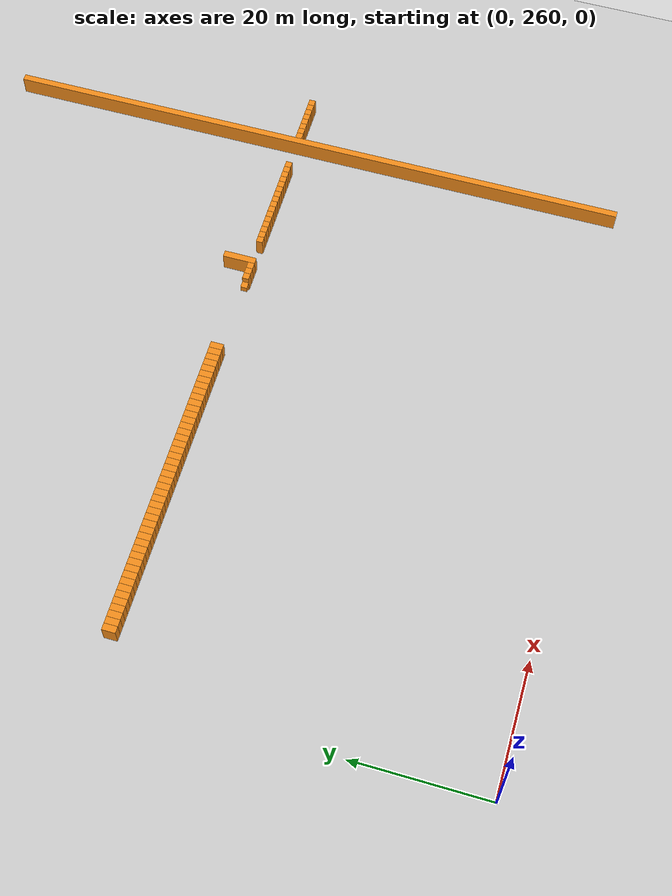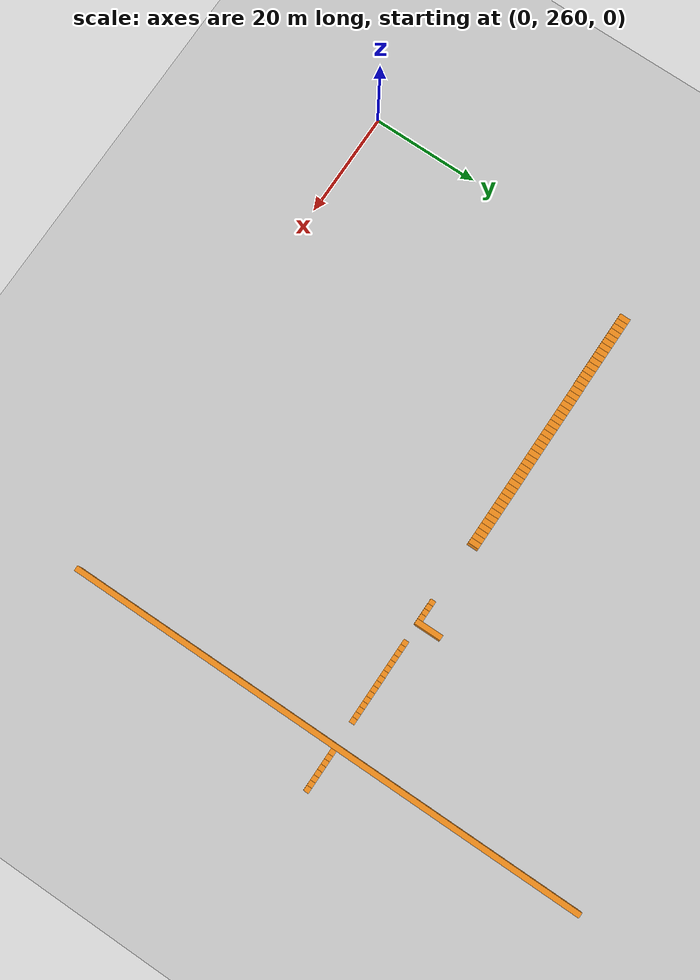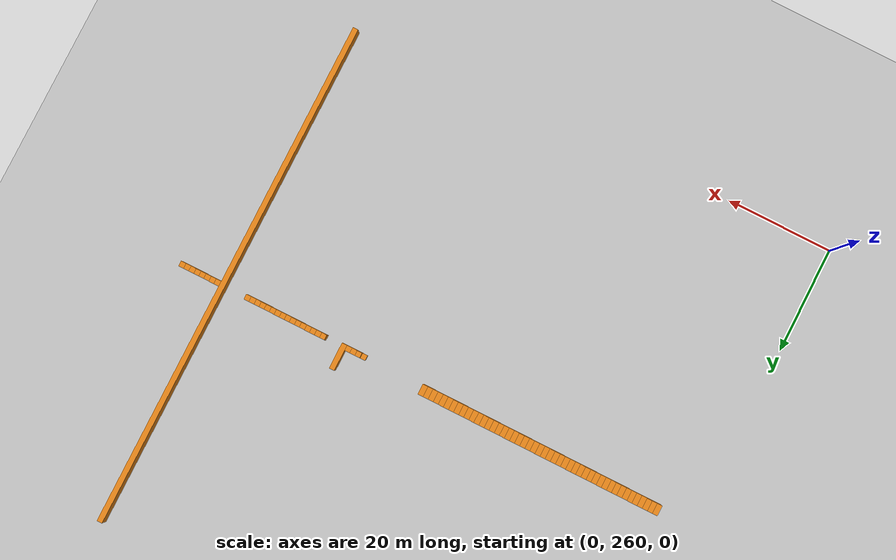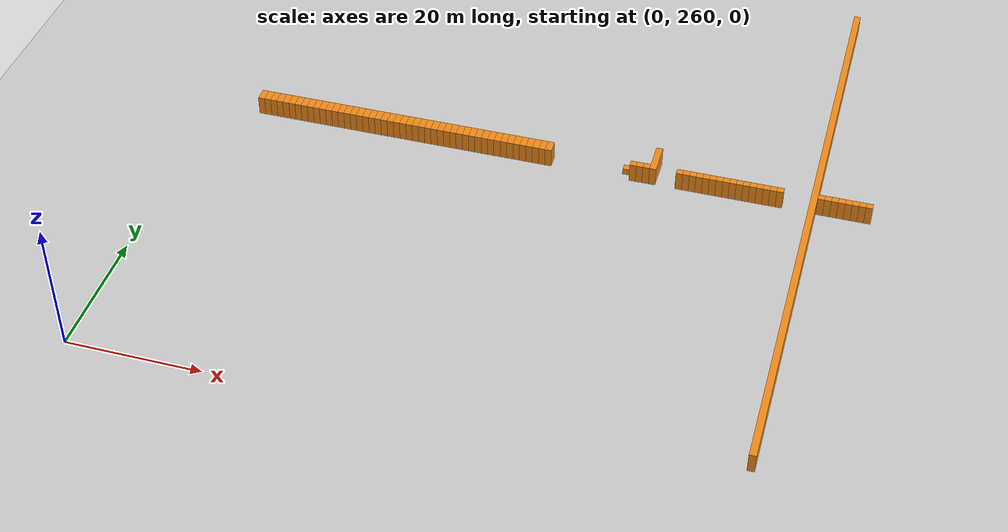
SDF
<sdf version="1.6">
 <world name="default">
  <include><uri>model://ground_plane</uri></include>
  <model name="unit_box_016">
   <pose>7.50   315.00     1.50 0 0 0</pose>
   <static>1</static>
   <link name="link">
    <inertial>
     <mass>5000</mass>
     <inertia><ixx>200</ixx><ixy>0</ixy><ixz>0</ixz><iyy>200</iyy><iyz>0</iyz><izz>200</izz></inertia>
    </inertial>
    <collision name="collision"><geometry><box><size>1 2 3</size></box></geometry></collision>
    <visual name="visual">
     <geometry><box><size>1 2 3</size></box></geometry>
     <material>
      <script><name>Gazebo/Orange</name><uri>file://media/materials/scripts/gazebo.material</uri></script>
     </material>
    </visual>
   </link>
  </model>
  <model name="unit_box_029">
   <pose>8.50   315.00     1.50 0 0 0</pose>
   <static>1</static>
   <link name="link">
    <inertial>
     <mass>5000</mass>
     <inertia><ixx>200</ixx><ixy>0</ixy><ixz>0</ixz><iyy>200</iyy><iyz>0</iyz><izz>200</izz></inertia>
    </inertial>
    <collision name="collision"><geometry><box><size>1 2 3</size></box></geometry></collision>
    <visual name="visual">
     <geometry><box><size>1 2 3</size></box></geometry>
     <material>
      <script><name>Gazebo/Orange</name><uri>file://media/materials/scripts/gazebo.material</uri></script>
     </material>
    </visual>
   </link>
  </model>
  <model name="unit_box_042">
   <pose>9.50   315.00     1.50 0 0 0</pose>
   <static>1</static>
   <link name="link">
    <inertial>
     <mass>5000</mass>
     <inertia><ixx>200</ixx><ixy>0</ixy><ixz>0</ixz><iyy>200</iyy><iyz>0</iyz><izz>200</izz></inertia>
    </inertial>
    <collision name="collision"><geometry><box><size>1 2 3</size></box></geometry></collision>
    <visual name="visual">
     <geometry><box><size>1 2 3</size></box></geometry>
     <material>
      <script><name>Gazebo/Orange</name><uri>file://media/materials/scripts/gazebo.material</uri></script>
     </material>
    </visual>
   </link>
  </model>
  <model name="unit_box_055">
   <pose>10.50   315.00     1.50 0 0 0</pose>
   <static>1</static>
   <link name="link">
    <inertial>
     <mass>5000</mass>
     <inertia><ixx>200</ixx><ixy>0</ixy><ixz>0</ixz><iyy>200</iyy><iyz>0</iyz><izz>200</izz></inertia>
    </inertial>
    <collision name="collision"><geometry><box><size>1 2 3</size></box></geometry></collision>
    <visual name="visual">
     <geometry><box><size>1 2 3</size></box></geometry>
     <material>
      <script><name>Gazebo/Orange</name><uri>file://media/materials/scripts/gazebo.material</uri></script>
     </material>
    </visual>
   </link>
  </model>
  <model name="unit_box_068">
   <pose>11.50   315.00     1.50 0 0 0</pose>
   <static>1</static>
   <link name="link">
    <inertial>
     <mass>5000</mass>
     <inertia><ixx>200</ixx><ixy>0</ixy><ixz>0</ixz><iyy>200</iyy><iyz>0</iyz><izz>200</izz></inertia>
    </inertial>
    <collision name="collision"><geometry><box><size>1 2 3</size></box></geometry></collision>
    <visual name="visual">
     <geometry><box><size>1 2 3</size></box></geometry>
     <material>
      <script><name>Gazebo/Orange</name><uri>file://media/materials/scripts/gazebo.material</uri></script>
     </material>
    </visual>
   </link>
  </model>
  <model name="unit_box_081">
   <pose>12.50   315.00     1.50 0 0 0</pose>
   <static>1</static>
   <link name="link">
    <inertial>
     <mass>5000</mass>
     <inertia><ixx>200</ixx><ixy>0</ixy><ixz>0</ixz><iyy>200</iyy><iyz>0</iyz><izz>200</izz></inertia>
    </inertial>
    <collision name="collision"><geometry><box><size>1 2 3</size></box></geometry></collision>
    <visual name="visual">
     <geometry><box><size>1 2 3</size></box></geometry>
     <material>
      <script><name>Gazebo/Orange</name><uri>file://media/materials/scripts/gazebo.material</uri></script>
     </material>
    </visual>
   </link>
  </model>
  <model name="unit_box_094">
   <pose>13.50   315.00     1.50 0 0 0</pose>
   <static>1</static>
   <link name="link">
    <inertial>
     <mass>5000</mass>
     <inertia><ixx>200</ixx><ixy>0</ixy><ixz>0</ixz><iyy>200</iyy><iyz>0</iyz><izz>200</izz></inertia>
    </inertial>
    <collision name="collision"><geometry><box><size>1 2 3</size></box></geometry></collision>
    <visual name="visual">
     <geometry><box><size>1 2 3</size></box></geometry>
     <material>
      <script><name>Gazebo/Orange</name><uri>file://media/materials/scripts/gazebo.material</uri></script>
     </material>
    </visual>
   </link>
  </model>
  <model name="unit_box_107">
   <pose>14.50   315.00     1.50 0 0 0</pose>
   <static>1</static>
   <link name="link">
    <inertial>
     <mass>5000</mass>
     <inertia><ixx>200</ixx><ixy>0</ixy><ixz>0</ixz><iyy>200</iyy><iyz>0</iyz><izz>200</izz></inertia>
    </inertial>
    <collision name="collision"><geometry><box><size>1 2 3</size></box></geometry></collision>
    <visual name="visual">
     <geometry><box><size>1 2 3</size></box></geometry>
     <material>
      <script><name>Gazebo/Orange</name><uri>file://media/materials/scripts/gazebo.material</uri></script>
     </material>
    </visual>
   </link>
  </model>
  <model name="unit_box_120">
   <pose>15.50   315.00     1.50 0 0 0</pose>
   <static>1</static>
   <link name="link">
    <inertial>
     <mass>5000</mass>
     <inertia><ixx>200</ixx><ixy>0</ixy><ixz>0</ixz><iyy>200</iyy><iyz>0</iyz><izz>200</izz></inertia>
    </inertial>
    <collision name="collision"><geometry><box><size>1 2 3</size></box></geometry></collision>
    <visual name="visual">
     <geometry><box><size>1 2 3</size></box></geometry>
     <material>
      <script><name>Gazebo/Orange</name><uri>file://media/materials/scripts/gazebo.material</uri></script>
     </material>
    </visual>
   </link>
  </model>
  <model name="unit_box_133">
   <pose>16.50   315.00     1.50 0 0 0</pose>
   <static>1</static>
   <link name="link">
    <inertial>
     <mass>5000</mass>
     <inertia><ixx>200</ixx><ixy>0</ixy><ixz>0</ixz><iyy>200</iyy><iyz>0</iyz><izz>200</izz></inertia>
    </inertial>
    <collision name="collision"><geometry><box><size>1 2 3</size></box></geometry></collision>
    <visual name="visual">
     <geometry><box><size>1 2 3</size></box></geometry>
     <material>
      <script><name>Gazebo/Orange</name><uri>file://media/materials/scripts/gazebo.material</uri></script>
     </material>
    </visual>
   </link>
  </model>
  <model name="unit_box_146">
   <pose>17.50   315.00     1.50 0 0 0</pose>
   <static>1</static>
   <link name="link">
    <inertial>
     <mass>5000</mass>
     <inertia><ixx>200</ixx><ixy>0</ixy><ixz>0</ixz><iyy>200</iyy><iyz>0</iyz><izz>200</izz></inertia>
    </inertial>
    <collision name="collision"><geometry><box><size>1 2 3</size></box></geometry></collision>
    <visual name="visual">
     <geometry><box><size>1 2 3</size></box></geometry>
     <material>
      <script><name>Gazebo/Orange</name><uri>file://media/materials/scripts/gazebo.material</uri></script>
     </material>
    </visual>
   </link>
  </model>
  <model name="unit_box_159">
   <pose>18.50   315.00     1.50 0 0 0</pose>
   <static>1</static>
   <link name="link">
    <inertial>
     <mass>5000</mass>
     <inertia><ixx>200</ixx><ixy>0</ixy><ixz>0</ixz><iyy>200</iyy><iyz>0</iyz><izz>200</izz></inertia>
    </inertial>
    <collision name="collision"><geometry><box><size>1 2 3</size></box></geometry></collision>
    <visual name="visual">
     <geometry><box><size>1 2 3</size></box></geometry>
     <material>
      <script><name>Gazebo/Orange</name><uri>file://media/materials/scripts/gazebo.material</uri></script>
     </material>
    </visual>
   </link>
  </model>
  <model name="unit_box_172">
   <pose>19.50   315.00     1.50 0 0 0</pose>
   <static>1</static>
   <link name="link">
    <inertial>
     <mass>5000</mass>
     <inertia><ixx>200</ixx><ixy>0</ixy><ixz>0</ixz><iyy>200</iyy><iyz>0</iyz><izz>200</izz></inertia>
    </inertial>
    <collision name="collision"><geometry><box><size>1 2 3</size></box></geometry></collision>
    <visual name="visual">
     <geometry><box><size>1 2 3</size></box></geometry>
     <material>
      <script><name>Gazebo/Orange</name><uri>file://media/materials/scripts/gazebo.material</uri></script>
     </material>
    </visual>
   </link>
  </model>
  <model name="unit_box_185">
   <pose>20.50   315.00     1.50 0 0 0</pose>
   <static>1</static>
   <link name="link">
    <inertial>
     <mass>5000</mass>
     <inertia><ixx>200</ixx><ixy>0</ixy><ixz>0</ixz><iyy>200</iyy><iyz>0</iyz><izz>200</izz></inertia>
    </inertial>
    <collision name="collision"><geometry><box><size>1 2 3</size></box></geometry></collision>
    <visual name="visual">
     <geometry><box><size>1 2 3</size></box></geometry>
     <material>
      <script><name>Gazebo/Orange</name><uri>file://media/materials/scripts/gazebo.material</uri></script>
     </material>
    </visual>
   </link>
  </model>
  <model name="unit_box_198">
   <pose>21.50   315.00     1.50 0 0 0</pose>
   <static>1</static>
   <link name="link">
    <inertial>
     <mass>5000</mass>
     <inertia><ixx>200</ixx><ixy>0</ixy><ixz>0</ixz><iyy>200</iyy><iyz>0</iyz><izz>200</izz></inertia>
    </inertial>
    <collision name="collision"><geometry><box><size>1 2 3</size></box></geometry></collision>
    <visual name="visual">
     <geometry><box><size>1 2 3</size></box></geometry>
     <material>
      <script><name>Gazebo/Orange</name><uri>file://media/materials/scripts/gazebo.material</uri></script>
     </material>
    </visual>
   </link>
  </model>
  <model name="unit_box_211">
   <pose>22.50   315.00     1.50 0 0 0</pose>
   <static>1</static>
   <link name="link">
    <inertial>
     <mass>5000</mass>
     <inertia><ixx>200</ixx><ixy>0</ixy><ixz>0</ixz><iyy>200</iyy><iyz>0</iyz><izz>200</izz></inertia>
    </inertial>
    <collision name="collision"><geometry><box><size>1 2 3</size></box></geometry></collision>
    <visual name="visual">
     <geometry><box><size>1 2 3</size></box></geometry>
     <material>
      <script><name>Gazebo/Orange</name><uri>file://media/materials/scripts/gazebo.material</uri></script>
     </material>
    </visual>
   </link>
  </model>
  <model name="unit_box_224">
   <pose>23.50   315.00     1.50 0 0 0</pose>
   <static>1</static>
   <link name="link">
    <inertial>
     <mass>5000</mass>
     <inertia><ixx>200</ixx><ixy>0</ixy><ixz>0</ixz><iyy>200</iyy><iyz>0</iyz><izz>200</izz></inertia>
    </inertial>
    <collision name="collision"><geometry><box><size>1 2 3</size></box></geometry></collision>
    <visual name="visual">
     <geometry><box><size>1 2 3</size></box></geometry>
     <material>
      <script><name>Gazebo/Orange</name><uri>file://media/materials/scripts/gazebo.material</uri></script>
     </material>
    </visual>
   </link>
  </model>
  <model name="unit_box_237">
   <pose>24.50   315.00     1.50 0 0 0</pose>
   <static>1</static>
   <link name="link">
    <inertial>
     <mass>5000</mass>
     <inertia><ixx>200</ixx><ixy>0</ixy><ixz>0</ixz><iyy>200</iyy><iyz>0</iyz><izz>200</izz></inertia>
    </inertial>
    <collision name="collision"><geometry><box><size>1 2 3</size></box></geometry></collision>
    <visual name="visual">
     <geometry><box><size>1 2 3</size></box></geometry>
     <material>
      <script><name>Gazebo/Orange</name><uri>file://media/materials/scripts/gazebo.material</uri></script>
     </material>
    </visual>
   </link>
  </model>
  <model name="unit_box_250">
   <pose>25.50   315.00     1.50 0 0 0</pose>
   <static>1</static>
   <link name="link">
    <inertial>
     <mass>5000</mass>
     <inertia><ixx>200</ixx><ixy>0</ixy><ixz>0</ixz><iyy>200</iyy><iyz>0</iyz><izz>200</izz></inertia>
    </inertial>
    <collision name="collision"><geometry><box><size>1 2 3</size></box></geometry></collision>
    <visual name="visual">
     <geometry><box><size>1 2 3</size></box></geometry>
     <material>
      <script><name>Gazebo/Orange</name><uri>file://media/materials/scripts/gazebo.material</uri></script>
     </material>
    </visual>
   </link>
  </model>
  <model name="unit_box_263">
   <pose>26.50   315.00     1.50 0 0 0</pose>
   <static>1</static>
   <link name="link">
    <inertial>
     <mass>5000</mass>
     <inertia><ixx>200</ixx><ixy>0</ixy><ixz>0</ixz><iyy>200</iyy><iyz>0</iyz><izz>200</izz></inertia>
    </inertial>
    <collision name="collision"><geometry><box><size>1 2 3</size></box></geometry></collision>
    <visual name="visual">
     <geometry><box><size>1 2 3</size></box></geometry>
     <material>
      <script><name>Gazebo/Orange</name><uri>file://media/materials/scripts/gazebo.material</uri></script>
     </material>
    </visual>
   </link>
  </model>
  <model name="unit_box_276">
   <pose>27.50   315.00     1.50 0 0 0</pose>
   <static>1</static>
   <link name="link">
    <inertial>
     <mass>5000</mass>
     <inertia><ixx>200</ixx><ixy>0</ixy><ixz>0</ixz><iyy>200</iyy><iyz>0</iyz><izz>200</izz></inertia>
    </inertial>
    <collision name="collision"><geometry><box><size>1 2 3</size></box></geometry></collision>
    <visual name="visual">
     <geometry><box><size>1 2 3</size></box></geometry>
     <material>
      <script><name>Gazebo/Orange</name><uri>file://media/materials/scripts/gazebo.material</uri></script>
     </material>
    </visual>
   </link>
  </model>
  <model name="unit_box_289">
   <pose>28.50   315.00     1.50 0 0 0</pose>
   <static>1</static>
   <link name="link">
    <inertial>
     <mass>5000</mass>
     <inertia><ixx>200</ixx><ixy>0</ixy><ixz>0</ixz><iyy>200</iyy><iyz>0</iyz><izz>200</izz></inertia>
    </inertial>
    <collision name="collision"><geometry><box><size>1 2 3</size></box></geometry></collision>
    <visual name="visual">
     <geometry><box><size>1 2 3</size></box></geometry>
     <material>
      <script><name>Gazebo/Orange</name><uri>file://media/materials/scripts/gazebo.material</uri></script>
     </material>
    </visual>
   </link>
  </model>
  <model name="unit_box_302">
   <pose>29.50   315.00     1.50 0 0 0</pose>
   <static>1</static>
   <link name="link">
    <inertial>
     <mass>5000</mass>
     <inertia><ixx>200</ixx><ixy>0</ixy><ixz>0</ixz><iyy>200</iyy><iyz>0</iyz><izz>200</izz></inertia>
    </inertial>
    <collision name="collision"><geometry><box><size>1 2 3</size></box></geometry></collision>
    <visual name="visual">
     <geometry><box><size>1 2 3</size></box></geometry>
     <material>
      <script><name>Gazebo/Orange</name><uri>file://media/materials/scripts/gazebo.material</uri></script>
     </material>
    </visual>
   </link>
  </model>
  <model name="unit_box_315">
   <pose>30.50   315.00     1.50 0 0 0</pose>
   <static>1</static>
   <link name="link">
    <inertial>
     <mass>5000</mass>
     <inertia><ixx>200</ixx><ixy>0</ixy><ixz>0</ixz><iyy>200</iyy><iyz>0</iyz><izz>200</izz></inertia>
    </inertial>
    <collision name="collision"><geometry><box><size>1 2 3</size></box></geometry></collision>
    <visual name="visual">
     <geometry><box><size>1 2 3</size></box></geometry>
     <material>
      <script><name>Gazebo/Orange</name><uri>file://media/materials/scripts/gazebo.material</uri></script>
     </material>
    </visual>
   </link>
  </model>
  <model name="unit_box_328">
   <pose>31.50   315.00     1.50 0 0 0</pose>
   <static>1</static>
   <link name="link">
    <inertial>
     <mass>5000</mass>
     <inertia><ixx>200</ixx><ixy>0</ixy><ixz>0</ixz><iyy>200</iyy><iyz>0</iyz><izz>200</izz></inertia>
    </inertial>
    <collision name="collision"><geometry><box><size>1 2 3</size></box></geometry></collision>
    <visual name="visual">
     <geometry><box><size>1 2 3</size></box></geometry>
     <material>
      <script><name>Gazebo/Orange</name><uri>file://media/materials/scripts/gazebo.material</uri></script>
     </material>
    </visual>
   </link>
  </model>
  <model name="unit_box_341">
   <pose>32.50   315.00     1.50 0 0 0</pose>
   <static>1</static>
   <link name="link">
    <inertial>
     <mass>5000</mass>
     <inertia><ixx>200</ixx><ixy>0</ixy><ixz>0</ixz><iyy>200</iyy><iyz>0</iyz><izz>200</izz></inertia>
    </inertial>
    <collision name="collision"><geometry><box><size>1 2 3</size></box></geometry></collision>
    <visual name="visual">
     <geometry><box><size>1 2 3</size></box></geometry>
     <material>
      <script><name>Gazebo/Orange</name><uri>file://media/materials/scripts/gazebo.material</uri></script>
     </material>
    </visual>
   </link>
  </model>
  <model name="unit_box_354">
   <pose>33.50   315.00     1.50 0 0 0</pose>
   <static>1</static>
   <link name="link">
    <inertial>
     <mass>5000</mass>
     <inertia><ixx>200</ixx><ixy>0</ixy><ixz>0</ixz><iyy>200</iyy><iyz>0</iyz><izz>200</izz></inertia>
    </inertial>
    <collision name="collision"><geometry><box><size>1 2 3</size></box></geometry></collision>
    <visual name="visual">
     <geometry><box><size>1 2 3</size></box></geometry>
     <material>
      <script><name>Gazebo/Orange</name><uri>file://media/materials/scripts/gazebo.material</uri></script>
     </material>
    </visual>
   </link>
  </model>
  <model name="unit_box_367">
   <pose>34.50   315.00     1.50 0 0 0</pose>
   <static>1</static>
   <link name="link">
    <inertial>
     <mass>5000</mass>
     <inertia><ixx>200</ixx><ixy>0</ixy><ixz>0</ixz><iyy>200</iyy><iyz>0</iyz><izz>200</izz></inertia>
    </inertial>
    <collision name="collision"><geometry><box><size>1 2 3</size></box></geometry></collision>
    <visual name="visual">
     <geometry><box><size>1 2 3</size></box></geometry>
     <material>
      <script><name>Gazebo/Orange</name><uri>file://media/materials/scripts/gazebo.material</uri></script>
     </material>
    </visual>
   </link>
  </model>
  <model name="unit_box_380">
   <pose>35.50   315.00     1.50 0 0 0</pose>
   <static>1</static>
   <link name="link">
    <inertial>
     <mass>5000</mass>
     <inertia><ixx>200</ixx><ixy>0</ixy><ixz>0</ixz><iyy>200</iyy><iyz>0</iyz><izz>200</izz></inertia>
    </inertial>
    <collision name="collision"><geometry><box><size>1 2 3</size></box></geometry></collision>
    <visual name="visual">
     <geometry><box><size>1 2 3</size></box></geometry>
     <material>
      <script><name>Gazebo/Orange</name><uri>file://media/materials/scripts/gazebo.material</uri></script>
     </material>
    </visual>
   </link>
  </model>
  <model name="unit_box_393">
   <pose>36.50   315.00     1.50 0 0 0</pose>
   <static>1</static>
   <link name="link">
    <inertial>
     <mass>5000</mass>
     <inertia><ixx>200</ixx><ixy>0</ixy><ixz>0</ixz><iyy>200</iyy><iyz>0</iyz><izz>200</izz></inertia>
    </inertial>
    <collision name="collision"><geometry><box><size>1 2 3</size></box></geometry></collision>
    <visual name="visual">
     <geometry><box><size>1 2 3</size></box></geometry>
     <material>
      <script><name>Gazebo/Orange</name><uri>file://media/materials/scripts/gazebo.material</uri></script>
     </material>
    </visual>
   </link>
  </model>
  <model name="unit_box_406">
   <pose>37.50   315.00     1.50 0 0 0</pose>
   <static>1</static>
   <link name="link">
    <inertial>
     <mass>5000</mass>
     <inertia><ixx>200</ixx><ixy>0</ixy><ixz>0</ixz><iyy>200</iyy><iyz>0</iyz><izz>200</izz></inertia>
    </inertial>
    <collision name="collision"><geometry><box><size>1 2 3</size></box></geometry></collision>
    <visual name="visual">
     <geometry><box><size>1 2 3</size></box></geometry>
     <material>
      <script><name>Gazebo/Orange</name><uri>file://media/materials/scripts/gazebo.material</uri></script>
     </material>
    </visual>
   </link>
  </model>
  <model name="unit_box_419">
   <pose>38.50   315.00     1.50 0 0 0</pose>
   <static>1</static>
   <link name="link">
    <inertial>
     <mass>5000</mass>
     <inertia><ixx>200</ixx><ixy>0</ixy><ixz>0</ixz><iyy>200</iyy><iyz>0</iyz><izz>200</izz></inertia>
    </inertial>
    <collision name="collision"><geometry><box><size>1 2 3</size></box></geometry></collision>
    <visual name="visual">
     <geometry><box><size>1 2 3</size></box></geometry>
     <material>
      <script><name>Gazebo/Orange</name><uri>file://media/materials/scripts/gazebo.material</uri></script>
     </material>
    </visual>
   </link>
  </model>
  <model name="unit_box_432">
   <pose>39.50   315.00     1.50 0 0 0</pose>
   <static>1</static>
   <link name="link">
    <inertial>
     <mass>5000</mass>
     <inertia><ixx>200</ixx><ixy>0</ixy><ixz>0</ixz><iyy>200</iyy><iyz>0</iyz><izz>200</izz></inertia>
    </inertial>
    <collision name="collision"><geometry><box><size>1 2 3</size></box></geometry></collision>
    <visual name="visual">
     <geometry><box><size>1 2 3</size></box></geometry>
     <material>
      <script><name>Gazebo/Orange</name><uri>file://media/materials/scripts/gazebo.material</uri></script>
     </material>
    </visual>
   </link>
  </model>
  <model name="unit_box_445">
   <pose>40.50   315.00     1.50 0 0 0</pose>
   <static>1</static>
   <link name="link">
    <inertial>
     <mass>5000</mass>
     <inertia><ixx>200</ixx><ixy>0</ixy><ixz>0</ixz><iyy>200</iyy><iyz>0</iyz><izz>200</izz></inertia>
    </inertial>
    <collision name="collision"><geometry><box><size>1 2 3</size></box></geometry></collision>
    <visual name="visual">
     <geometry><box><size>1 2 3</size></box></geometry>
     <material>
      <script><name>Gazebo/Orange</name><uri>file://media/materials/scripts/gazebo.material</uri></script>
     </material>
    </visual>
   </link>
  </model>
  <model name="unit_box_458">
   <pose>41.50   315.00     1.50 0 0 0</pose>
   <static>1</static>
   <link name="link">
    <inertial>
     <mass>5000</mass>
     <inertia><ixx>200</ixx><ixy>0</ixy><ixz>0</ixz><iyy>200</iyy><iyz>0</iyz><izz>200</izz></inertia>
    </inertial>
    <collision name="collision"><geometry><box><size>1 2 3</size></box></geometry></collision>
    <visual name="visual">
     <geometry><box><size>1 2 3</size></box></geometry>
     <material>
      <script><name>Gazebo/Orange</name><uri>file://media/materials/scripts/gazebo.material</uri></script>
     </material>
    </visual>
   </link>
  </model>
  <model name="unit_box_471">
   <pose>42.50   315.00     1.50 0 0 0</pose>
   <static>1</static>
   <link name="link">
    <inertial>
     <mass>5000</mass>
     <inertia><ixx>200</ixx><ixy>0</ixy><ixz>0</ixz><iyy>200</iyy><iyz>0</iyz><izz>200</izz></inertia>
    </inertial>
    <collision name="collision"><geometry><box><size>1 2 3</size></box></geometry></collision>
    <visual name="visual">
     <geometry><box><size>1 2 3</size></box></geometry>
     <material>
      <script><name>Gazebo/Orange</name><uri>file://media/materials/scripts/gazebo.material</uri></script>
     </material>
    </visual>
   </link>
  </model>
  <model name="unit_box_484">
   <pose>43.50   315.00     1.50 0 0 0</pose>
   <static>1</static>
   <link name="link">
    <inertial>
     <mass>5000</mass>
     <inertia><ixx>200</ixx><ixy>0</ixy><ixz>0</ixz><iyy>200</iyy><iyz>0</iyz><izz>200</izz></inertia>
    </inertial>
    <collision name="collision"><geometry><box><size>1 2 3</size></box></geometry></collision>
    <visual name="visual">
     <geometry><box><size>1 2 3</size></box></geometry>
     <material>
      <script><name>Gazebo/Orange</name><uri>file://media/materials/scripts/gazebo.material</uri></script>
     </material>
    </visual>
   </link>
  </model>
  <model name="unit_box_497">
   <pose>44.50   315.00     1.50 0 0 0</pose>
   <static>1</static>
   <link name="link">
    <inertial>
     <mass>5000</mass>
     <inertia><ixx>200</ixx><ixy>0</ixy><ixz>0</ixz><iyy>200</iyy><iyz>0</iyz><izz>200</izz></inertia>
    </inertial>
    <collision name="collision"><geometry><box><size>1 2 3</size></box></geometry></collision>
    <visual name="visual">
     <geometry><box><size>1 2 3</size></box></geometry>
     <material>
      <script><name>Gazebo/Orange</name><uri>file://media/materials/scripts/gazebo.material</uri></script>
     </material>
    </visual>
   </link>
  </model>
  <model name="unit_box_510">
   <pose>45.50   315.00     1.50 0 0 0</pose>
   <static>1</static>
   <link name="link">
    <inertial>
     <mass>5000</mass>
     <inertia><ixx>200</ixx><ixy>0</ixy><ixz>0</ixz><iyy>200</iyy><iyz>0</iyz><izz>200</izz></inertia>
    </inertial>
    <collision name="collision"><geometry><box><size>1 2 3</size></box></geometry></collision>
    <visual name="visual">
     <geometry><box><size>1 2 3</size></box></geometry>
     <material>
      <script><name>Gazebo/Orange</name><uri>file://media/materials/scripts/gazebo.material</uri></script>
     </material>
    </visual>
   </link>
  </model>
  <model name="unit_box_523">
   <pose>46.50   315.00     1.50 0 0 0</pose>
   <static>1</static>
   <link name="link">
    <inertial>
     <mass>5000</mass>
     <inertia><ixx>200</ixx><ixy>0</ixy><ixz>0</ixz><iyy>200</iyy><iyz>0</iyz><izz>200</izz></inertia>
    </inertial>
    <collision name="collision"><geometry><box><size>1 2 3</size></box></geometry></collision>
    <visual name="visual">
     <geometry><box><size>1 2 3</size></box></geometry>
     <material>
      <script><name>Gazebo/Orange</name><uri>file://media/materials/scripts/gazebo.material</uri></script>
     </material>
    </visual>
   </link>
  </model>
  <model name="unit_box_536">
   <pose>47.50   315.00     1.50 0 0 0</pose>
   <static>1</static>
   <link name="link">
    <inertial>
     <mass>5000</mass>
     <inertia><ixx>200</ixx><ixy>0</ixy><ixz>0</ixz><iyy>200</iyy><iyz>0</iyz><izz>200</izz></inertia>
    </inertial>
    <collision name="collision"><geometry><box><size>1 2 3</size></box></geometry></collision>
    <visual name="visual">
     <geometry><box><size>1 2 3</size></box></geometry>
     <material>
      <script><name>Gazebo/Orange</name><uri>file://media/materials/scripts/gazebo.material</uri></script>
     </material>
    </visual>
   </link>
  </model>
  <model name="unit_box_549">
   <pose>48.50   315.00     1.50 0 0 0</pose>
   <static>1</static>
   <link name="link">
    <inertial>
     <mass>5000</mass>
     <inertia><ixx>200</ixx><ixy>0</ixy><ixz>0</ixz><iyy>200</iyy><iyz>0</iyz><izz>200</izz></inertia>
    </inertial>
    <collision name="collision"><geometry><box><size>1 2 3</size></box></geometry></collision>
    <visual name="visual">
     <geometry><box><size>1 2 3</size></box></geometry>
     <material>
      <script><name>Gazebo/Orange</name><uri>file://media/materials/scripts/gazebo.material</uri></script>
     </material>
    </visual>
   </link>
  </model>
  <model name="unit_box_562">
   <pose>49.50   315.00     1.50 0 0 0</pose>
   <static>1</static>
   <link name="link">
    <inertial>
     <mass>5000</mass>
     <inertia><ixx>200</ixx><ixy>0</ixy><ixz>0</ixz><iyy>200</iyy><iyz>0</iyz><izz>200</izz></inertia>
    </inertial>
    <collision name="collision"><geometry><box><size>1 2 3</size></box></geometry></collision>
    <visual name="visual">
     <geometry><box><size>1 2 3</size></box></geometry>
     <material>
      <script><name>Gazebo/Orange</name><uri>file://media/materials/scripts/gazebo.material</uri></script>
     </material>
    </visual>
   </link>
  </model>
  <model name="unit_box_578">
   <pose>50.50   315.00     1.50 0 0 0</pose>
   <static>1</static>
   <link name="link">
    <inertial>
     <mass>5000</mass>
     <inertia><ixx>200</ixx><ixy>0</ixy><ixz>0</ixz><iyy>200</iyy><iyz>0</iyz><izz>200</izz></inertia>
    </inertial>
    <collision name="collision"><geometry><box><size>1 2 3</size></box></geometry></collision>
    <visual name="visual">
     <geometry><box><size>1 2 3</size></box></geometry>
     <material>
      <script><name>Gazebo/Orange</name><uri>file://media/materials/scripts/gazebo.material</uri></script>
     </material>
    </visual>
   </link>
  </model>
  <model name="unit_box_592">
   <pose>51.50   315.00     1.50 0 0 0</pose>
   <static>1</static>
   <link name="link">
    <inertial>
     <mass>5000</mass>
     <inertia><ixx>200</ixx><ixy>0</ixy><ixz>0</ixz><iyy>200</iyy><iyz>0</iyz><izz>200</izz></inertia>
    </inertial>
    <collision name="collision"><geometry><box><size>1 2 3</size></box></geometry></collision>
    <visual name="visual">
     <geometry><box><size>1 2 3</size></box></geometry>
     <material>
      <script><name>Gazebo/Orange</name><uri>file://media/materials/scripts/gazebo.material</uri></script>
     </material>
    </visual>
   </link>
  </model>
  <model name="unit_box_606">
   <pose>52.50   315.00     1.50 0 0 0</pose>
   <static>1</static>
   <link name="link">
    <inertial>
     <mass>5000</mass>
     <inertia><ixx>200</ixx><ixy>0</ixy><ixz>0</ixz><iyy>200</iyy><iyz>0</iyz><izz>200</izz></inertia>
    </inertial>
    <collision name="collision"><geometry><box><size>1 2 3</size></box></geometry></collision>
    <visual name="visual">
     <geometry><box><size>1 2 3</size></box></geometry>
     <material>
      <script><name>Gazebo/Orange</name><uri>file://media/materials/scripts/gazebo.material</uri></script>
     </material>
    </visual>
   </link>
  </model>
  <model name="unit_box_620">
   <pose>53.50   315.00     1.50 0 0 0</pose>
   <static>1</static>
   <link name="link">
    <inertial>
     <mass>5000</mass>
     <inertia><ixx>200</ixx><ixy>0</ixy><ixz>0</ixz><iyy>200</iyy><iyz>0</iyz><izz>200</izz></inertia>
    </inertial>
    <collision name="collision"><geometry><box><size>1 2 3</size></box></geometry></collision>
    <visual name="visual">
     <geometry><box><size>1 2 3</size></box></geometry>
     <material>
      <script><name>Gazebo/Orange</name><uri>file://media/materials/scripts/gazebo.material</uri></script>
     </material>
    </visual>
   </link>
  </model>
  <model name="unit_box_719">
   <pose>65.50   314.50     1.50 0 0 0</pose>
   <static>1</static>
   <link name="link">
    <inertial>
     <mass>5000</mass>
     <inertia><ixx>200</ixx><ixy>0</ixy><ixz>0</ixz><iyy>200</iyy><iyz>0</iyz><izz>200</izz></inertia>
    </inertial>
    <collision name="collision"><geometry><box><size>1 1 1</size></box></geometry></collision>
    <visual name="visual">
     <geometry><box><size>1 1 1</size></box></geometry>
     <material>
      <script><name>Gazebo/Orange</name><uri>file://media/materials/scripts/gazebo.material</uri></script>
     </material>
    </visual>
   </link>
  </model>
  <model name="unit_box_725">
   <pose>66.50   314.50     1.50 0 0 0</pose>
   <static>1</static>
   <link name="link">
    <inertial>
     <mass>5000</mass>
     <inertia><ixx>200</ixx><ixy>0</ixy><ixz>0</ixz><iyy>200</iyy><iyz>0</iyz><izz>200</izz></inertia>
    </inertial>
    <collision name="collision"><geometry><box><size>1 1 3</size></box></geometry></collision>
    <visual name="visual">
     <geometry><box><size>1 1 3</size></box></geometry>
     <material>
      <script><name>Gazebo/Orange</name><uri>file://media/materials/scripts/gazebo.material</uri></script>
     </material>
    </visual>
   </link>
  </model>
  <model name="unit_box_731">
   <pose>67.50   314.50     1.50 0 0 0</pose>
   <static>1</static>
   <link name="link">
    <inertial>
     <mass>5000</mass>
     <inertia><ixx>200</ixx><ixy>0</ixy><ixz>0</ixz><iyy>200</iyy><iyz>0</iyz><izz>200</izz></inertia>
    </inertial>
    <collision name="collision"><geometry><box><size>1 1 3</size></box></geometry></collision>
    <visual name="visual">
     <geometry><box><size>1 1 3</size></box></geometry>
     <material>
      <script><name>Gazebo/Orange</name><uri>file://media/materials/scripts/gazebo.material</uri></script>
     </material>
    </visual>
   </link>
  </model>
  <model name="unit_box_737">
   <pose>68.50   314.50     1.50 0 0 0</pose>
   <static>1</static>
   <link name="link">
    <inertial>
     <mass>5000</mass>
     <inertia><ixx>200</ixx><ixy>0</ixy><ixz>0</ixz><iyy>200</iyy><iyz>0</iyz><izz>200</izz></inertia>
    </inertial>
    <collision name="collision"><geometry><box><size>1 1 3</size></box></geometry></collision>
    <visual name="visual">
     <geometry><box><size>1 1 3</size></box></geometry>
     <material>
      <script><name>Gazebo/Orange</name><uri>file://media/materials/scripts/gazebo.material</uri></script>
     </material>
    </visual>
   </link>
  </model>
  <model name="unit_box_751">
   <pose>69.50   316.50     1.50 0 0 0</pose>
   <static>1</static>
   <link name="link">
    <inertial>
     <mass>5000</mass>
     <inertia><ixx>200</ixx><ixy>0</ixy><ixz>0</ixz><iyy>200</iyy><iyz>0</iyz><izz>200</izz></inertia>
    </inertial>
    <collision name="collision"><geometry><box><size>1 5 3</size></box></geometry></collision>
    <visual name="visual">
     <geometry><box><size>1 5 3</size></box></geometry>
     <material>
      <script><name>Gazebo/Orange</name><uri>file://media/materials/scripts/gazebo.material</uri></script>
     </material>
    </visual>
   </link>
  </model>
  <model name="unit_box_806">
   <pose>73.50   314.50     1.50 0 0 0</pose>
   <static>1</static>
   <link name="link">
    <inertial>
     <mass>5000</mass>
     <inertia><ixx>200</ixx><ixy>0</ixy><ixz>0</ixz><iyy>200</iyy><iyz>0</iyz><izz>200</izz></inertia>
    </inertial>
    <collision name="collision"><geometry><box><size>1 1 3</size></box></geometry></collision>
    <visual name="visual">
     <geometry><box><size>1 1 3</size></box></geometry>
     <material>
      <script><name>Gazebo/Orange</name><uri>file://media/materials/scripts/gazebo.material</uri></script>
     </material>
    </visual>
   </link>
  </model>
  <model name="unit_box_822">
   <pose>74.50   314.50     1.50 0 0 0</pose>
   <static>1</static>
   <link name="link">
    <inertial>
     <mass>5000</mass>
     <inertia><ixx>200</ixx><ixy>0</ixy><ixz>0</ixz><iyy>200</iyy><iyz>0</iyz><izz>200</izz></inertia>
    </inertial>
    <collision name="collision"><geometry><box><size>1 1 3</size></box></geometry></collision>
    <visual name="visual">
     <geometry><box><size>1 1 3</size></box></geometry>
     <material>
      <script><name>Gazebo/Orange</name><uri>file://media/materials/scripts/gazebo.material</uri></script>
     </material>
    </visual>
   </link>
  </model>
  <model name="unit_box_837">
   <pose>75.50   314.50     1.50 0 0 0</pose>
   <static>1</static>
   <link name="link">
    <inertial>
     <mass>5000</mass>
     <inertia><ixx>200</ixx><ixy>0</ixy><ixz>0</ixz><iyy>200</iyy><iyz>0</iyz><izz>200</izz></inertia>
    </inertial>
    <collision name="collision"><geometry><box><size>1 1 3</size></box></geometry></collision>
    <visual name="visual">
     <geometry><box><size>1 1 3</size></box></geometry>
     <material>
      <script><name>Gazebo/Orange</name><uri>file://media/materials/scripts/gazebo.material</uri></script>
     </material>
    </visual>
   </link>
  </model>
  <model name="unit_box_852">
   <pose>76.50   314.50     1.50 0 0 0</pose>
   <static>1</static>
   <link name="link">
    <inertial>
     <mass>5000</mass>
     <inertia><ixx>200</ixx><ixy>0</ixy><ixz>0</ixz><iyy>200</iyy><iyz>0</iyz><izz>200</izz></inertia>
    </inertial>
    <collision name="collision"><geometry><box><size>1 1 3</size></box></geometry></collision>
    <visual name="visual">
     <geometry><box><size>1 1 3</size></box></geometry>
     <material>
      <script><name>Gazebo/Orange</name><uri>file://media/materials/scripts/gazebo.material</uri></script>
     </material>
    </visual>
   </link>
  </model>
  <model name="unit_box_866">
   <pose>77.50   314.50     1.50 0 0 0</pose>
   <static>1</static>
   <link name="link">
    <inertial>
     <mass>5000</mass>
     <inertia><ixx>200</ixx><ixy>0</ixy><ixz>0</ixz><iyy>200</iyy><iyz>0</iyz><izz>200</izz></inertia>
    </inertial>
    <collision name="collision"><geometry><box><size>1 1 3</size></box></geometry></collision>
    <visual name="visual">
     <geometry><box><size>1 1 3</size></box></geometry>
     <material>
      <script><name>Gazebo/Orange</name><uri>file://media/materials/scripts/gazebo.material</uri></script>
     </material>
    </visual>
   </link>
  </model>
  <model name="unit_box_879">
   <pose>78.50   314.50     1.50 0 0 0</pose>
   <static>1</static>
   <link name="link">
    <inertial>
     <mass>5000</mass>
     <inertia><ixx>200</ixx><ixy>0</ixy><ixz>0</ixz><iyy>200</iyy><iyz>0</iyz><izz>200</izz></inertia>
    </inertial>
    <collision name="collision"><geometry><box><size>1 1 3</size></box></geometry></collision>
    <visual name="visual">
     <geometry><box><size>1 1 3</size></box></geometry>
     <material>
      <script><name>Gazebo/Orange</name><uri>file://media/materials/scripts/gazebo.material</uri></script>
     </material>
    </visual>
   </link>
  </model>
  <model name="unit_box_892">
   <pose>79.50   314.50     1.50 0 0 0</pose>
   <static>1</static>
   <link name="link">
    <inertial>
     <mass>5000</mass>
     <inertia><ixx>200</ixx><ixy>0</ixy><ixz>0</ixz><iyy>200</iyy><iyz>0</iyz><izz>200</izz></inertia>
    </inertial>
    <collision name="collision"><geometry><box><size>1 1 3</size></box></geometry></collision>
    <visual name="visual">
     <geometry><box><size>1 1 3</size></box></geometry>
     <material>
      <script><name>Gazebo/Orange</name><uri>file://media/materials/scripts/gazebo.material</uri></script>
     </material>
    </visual>
   </link>
  </model>
  <model name="unit_box_905">
   <pose>80.50   314.50     1.50 0 0 0</pose>
   <static>1</static>
   <link name="link">
    <inertial>
     <mass>5000</mass>
     <inertia><ixx>200</ixx><ixy>0</ixy><ixz>0</ixz><iyy>200</iyy><iyz>0</iyz><izz>200</izz></inertia>
    </inertial>
    <collision name="collision"><geometry><box><size>1 1 3</size></box></geometry></collision>
    <visual name="visual">
     <geometry><box><size>1 1 3</size></box></geometry>
     <material>
      <script><name>Gazebo/Orange</name><uri>file://media/materials/scripts/gazebo.material</uri></script>
     </material>
    </visual>
   </link>
  </model>
  <model name="unit_box_918">
   <pose>81.50   314.50     1.50 0 0 0</pose>
   <static>1</static>
   <link name="link">
    <inertial>
     <mass>5000</mass>
     <inertia><ixx>200</ixx><ixy>0</ixy><ixz>0</ixz><iyy>200</iyy><iyz>0</iyz><izz>200</izz></inertia>
    </inertial>
    <collision name="collision"><geometry><box><size>1 1 3</size></box></geometry></collision>
    <visual name="visual">
     <geometry><box><size>1 1 3</size></box></geometry>
     <material>
      <script><name>Gazebo/Orange</name><uri>file://media/materials/scripts/gazebo.material</uri></script>
     </material>
    </visual>
   </link>
  </model>
  <model name="unit_box_931">
   <pose>82.50   314.50     1.50 0 0 0</pose>
   <static>1</static>
   <link name="link">
    <inertial>
     <mass>5000</mass>
     <inertia><ixx>200</ixx><ixy>0</ixy><ixz>0</ixz><iyy>200</iyy><iyz>0</iyz><izz>200</izz></inertia>
    </inertial>
    <collision name="collision"><geometry><box><size>1 1 3</size></box></geometry></collision>
    <visual name="visual">
     <geometry><box><size>1 1 3</size></box></geometry>
     <material>
      <script><name>Gazebo/Orange</name><uri>file://media/materials/scripts/gazebo.material</uri></script>
     </material>
    </visual>
   </link>
  </model>
  <model name="unit_box_945">
   <pose>83.50   314.50     1.50 0 0 0</pose>
   <static>1</static>
   <link name="link">
    <inertial>
     <mass>5000</mass>
     <inertia><ixx>200</ixx><ixy>0</ixy><ixz>0</ixz><iyy>200</iyy><iyz>0</iyz><izz>200</izz></inertia>
    </inertial>
    <collision name="collision"><geometry><box><size>1 1 3</size></box></geometry></collision>
    <visual name="visual">
     <geometry><box><size>1 1 3</size></box></geometry>
     <material>
      <script><name>Gazebo/Orange</name><uri>file://media/materials/scripts/gazebo.material</uri></script>
     </material>
    </visual>
   </link>
  </model>
  <model name="unit_box_959">
   <pose>84.50   314.50     1.50 0 0 0</pose>
   <static>1</static>
   <link name="link">
    <inertial>
     <mass>5000</mass>
     <inertia><ixx>200</ixx><ixy>0</ixy><ixz>0</ixz><iyy>200</iyy><iyz>0</iyz><izz>200</izz></inertia>
    </inertial>
    <collision name="collision"><geometry><box><size>1 1 3</size></box></geometry></collision>
    <visual name="visual">
     <geometry><box><size>1 1 3</size></box></geometry>
     <material>
      <script><name>Gazebo/Orange</name><uri>file://media/materials/scripts/gazebo.material</uri></script>
     </material>
    </visual>
   </link>
  </model>
  <model name="unit_box_971">
   <pose>85.50   314.50     1.50 0 0 0</pose>
   <static>1</static>
   <link name="link">
    <inertial>
     <mass>5000</mass>
     <inertia><ixx>200</ixx><ixy>0</ixy><ixz>0</ixz><iyy>200</iyy><iyz>0</iyz><izz>200</izz></inertia>
    </inertial>
    <collision name="collision"><geometry><box><size>1 1 3</size></box></geometry></collision>
    <visual name="visual">
     <geometry><box><size>1 1 3</size></box></geometry>
     <material>
      <script><name>Gazebo/Orange</name><uri>file://media/materials/scripts/gazebo.material</uri></script>
     </material>
    </visual>
   </link>
  </model>
  <model name="unit_box_986">
   <pose>86.50   314.50     1.50 0 0 0</pose>
   <static>1</static>
   <link name="link">
    <inertial>
     <mass>5000</mass>
     <inertia><ixx>200</ixx><ixy>0</ixy><ixz>0</ixz><iyy>200</iyy><iyz>0</iyz><izz>200</izz></inertia>
    </inertial>
    <collision name="collision"><geometry><box><size>1 1 3</size></box></geometry></collision>
    <visual name="visual">
     <geometry><box><size>1 1 3</size></box></geometry>
     <material>
      <script><name>Gazebo/Orange</name><uri>file://media/materials/scripts/gazebo.material</uri></script>
     </material>
    </visual>
   </link>
  </model>
  <model name="unit_box_996">
   <pose>87.50   314.50     1.50 0 0 0</pose>
   <static>1</static>
   <link name="link">
    <inertial>
     <mass>5000</mass>
     <inertia><ixx>200</ixx><ixy>0</ixy><ixz>0</ixz><iyy>200</iyy><iyz>0</iyz><izz>200</izz></inertia>
    </inertial>
    <collision name="collision"><geometry><box><size>1 1 3</size></box></geometry></collision>
    <visual name="visual">
     <geometry><box><size>1 1 3</size></box></geometry>
     <material>
      <script><name>Gazebo/Orange</name><uri>file://media/materials/scripts/gazebo.material</uri></script>
     </material>
    </visual>
   </link>
  </model>
  <model name="unit_box_1007">
   <pose>88.50   314.50     1.50 0 0 0</pose>
   <static>1</static>
   <link name="link">
    <inertial>
     <mass>5000</mass>
     <inertia><ixx>200</ixx><ixy>0</ixy><ixz>0</ixz><iyy>200</iyy><iyz>0</iyz><izz>200</izz></inertia>
    </inertial>
    <collision name="collision"><geometry><box><size>1 1 3</size></box></geometry></collision>
    <visual name="visual">
     <geometry><box><size>1 1 3</size></box></geometry>
     <material>
      <script><name>Gazebo/Orange</name><uri>file://media/materials/scripts/gazebo.material</uri></script>
     </material>
    </visual>
   </link>
  </model>
  <model name="unit_box_1052">
   <pose>93.50   312.00     1.50 0 0 0</pose>
   <static>1</static>
   <link name="link">
    <inertial>
     <mass>5000</mass>
     <inertia><ixx>200</ixx><ixy>0</ixy><ixz>0</ixz><iyy>200</iyy><iyz>0</iyz><izz>200</izz></inertia>
    </inertial>
    <collision name="collision"><geometry><box><size>1 98 3</size></box></geometry></collision>
    <visual name="visual">
     <geometry><box><size>1 98 3</size></box></geometry>
     <material>
      <script><name>Gazebo/Orange</name><uri>file://media/materials/scripts/gazebo.material</uri></script>
     </material>
    </visual>
   </link>
  </model>
  <model name="unit_box_1061">
   <pose>94.50   314.50     1.50 0 0 0</pose>
   <static>1</static>
   <link name="link">
    <inertial>
     <mass>5000</mass>
     <inertia><ixx>200</ixx><ixy>0</ixy><ixz>0</ixz><iyy>200</iyy><iyz>0</iyz><izz>200</izz></inertia>
    </inertial>
    <collision name="collision"><geometry><box><size>1 1 3</size></box></geometry></collision>
    <visual name="visual">
     <geometry><box><size>1 1 3</size></box></geometry>
     <material>
      <script><name>Gazebo/Orange</name><uri>file://media/materials/scripts/gazebo.material</uri></script>
     </material>
    </visual>
   </link>
  </model>
  <model name="unit_box_1072">
   <pose>95.50   314.50     1.50 0 0 0</pose>
   <static>1</static>
   <link name="link">
    <inertial>
     <mass>5000</mass>
     <inertia><ixx>200</ixx><ixy>0</ixy><ixz>0</ixz><iyy>200</iyy><iyz>0</iyz><izz>200</izz></inertia>
    </inertial>
    <collision name="collision"><geometry><box><size>1 1 3</size></box></geometry></collision>
    <visual name="visual">
     <geometry><box><size>1 1 3</size></box></geometry>
     <material>
      <script><name>Gazebo/Orange</name><uri>file://media/materials/scripts/gazebo.material</uri></script>
     </material>
    </visual>
   </link>
  </model>
  <model name="unit_box_1084">
   <pose>96.50   314.50     1.50 0 0 0</pose>
   <static>1</static>
   <link name="link">
    <inertial>
     <mass>5000</mass>
     <inertia><ixx>200</ixx><ixy>0</ixy><ixz>0</ixz><iyy>200</iyy><iyz>0</iyz><izz>200</izz></inertia>
    </inertial>
    <collision name="collision"><geometry><box><size>1 1 3</size></box></geometry></collision>
    <visual name="visual">
     <geometry><box><size>1 1 3</size></box></geometry>
     <material>
      <script><name>Gazebo/Orange</name><uri>file://media/materials/scripts/gazebo.material</uri></script>
     </material>
    </visual>
   </link>
  </model>
  <model name="unit_box_1094">
   <pose>97.50   314.50     1.50 0 0 0</pose>
   <static>1</static>
   <link name="link">
    <inertial>
     <mass>5000</mass>
     <inertia><ixx>200</ixx><ixy>0</ixy><ixz>0</ixz><iyy>200</iyy><iyz>0</iyz><izz>200</izz></inertia>
    </inertial>
    <collision name="collision"><geometry><box><size>1 1 3</size></box></geometry></collision>
    <visual name="visual">
     <geometry><box><size>1 1 3</size></box></geometry>
     <material>
      <script><name>Gazebo/Orange</name><uri>file://media/materials/scripts/gazebo.material</uri></script>
     </material>
    </visual>
   </link>
  </model>
  <model name="unit_box_1105">
   <pose>98.50   314.50     1.50 0 0 0</pose>
   <static>1</static>
   <link name="link">
    <inertial>
     <mass>5000</mass>
     <inertia><ixx>200</ixx><ixy>0</ixy><ixz>0</ixz><iyy>200</iyy><iyz>0</iyz><izz>200</izz></inertia>
    </inertial>
    <collision name="collision"><geometry><box><size>1 1 3</size></box></geometry></collision>
    <visual name="visual">
     <geometry><box><size>1 1 3</size></box></geometry>
     <material>
      <script><name>Gazebo/Orange</name><uri>file://media/materials/scripts/gazebo.material</uri></script>
     </material>
    </visual>
   </link>
  </model>
  <model name="unit_box_1117">
   <pose>99.50   314.50     1.50 0 0 0</pose>
   <static>1</static>
   <link name="link">
    <inertial>
     <mass>5000</mass>
     <inertia><ixx>200</ixx><ixy>0</ixy><ixz>0</ixz><iyy>200</iyy><iyz>0</iyz><izz>200</izz></inertia>
    </inertial>
    <collision name="collision"><geometry><box><size>1 1 3</size></box></geometry></collision>
    <visual name="visual">
     <geometry><box><size>1 1 3</size></box></geometry>
     <material>
      <script><name>Gazebo/Orange</name><uri>file://media/materials/scripts/gazebo.material</uri></script>
     </material>
    </visual>
   </link>
  </model>
  <model name="unit_box_1129">
   <pose>100.50   314.50     1.50 0 0 0</pose>
   <static>1</static>
   <link name="link">
    <inertial>
     <mass>5000</mass>
     <inertia><ixx>200</ixx><ixy>0</ixy><ixz>0</ixz><iyy>200</iyy><iyz>0</iyz><izz>200</izz></inertia>
    </inertial>
    <collision name="collision"><geometry><box><size>1 1 3</size></box></geometry></collision>
    <visual name="visual">
     <geometry><box><size>1 1 3</size></box></geometry>
     <material>
      <script><name>Gazebo/Orange</name><uri>file://media/materials/scripts/gazebo.material</uri></script>
     </material>
    </visual>
   </link>
  </model>
  <model name="unit_box_1141">
   <pose>101.50   314.50     1.50 0 0 0</pose>
   <static>1</static>
   <link name="link">
    <inertial>
     <mass>5000</mass>
     <inertia><ixx>200</ixx><ixy>0</ixy><ixz>0</ixz><iyy>200</iyy><iyz>0</iyz><izz>200</izz></inertia>
    </inertial>
    <collision name="collision"><geometry><box><size>1 1 3</size></box></geometry></collision>
    <visual name="visual">
     <geometry><box><size>1 1 3</size></box></geometry>
     <material>
      <script><name>Gazebo/Orange</name><uri>file://media/materials/scripts/gazebo.material</uri></script>
     </material>
    </visual>
   </link>
  </model>
 </world>
</sdf>
